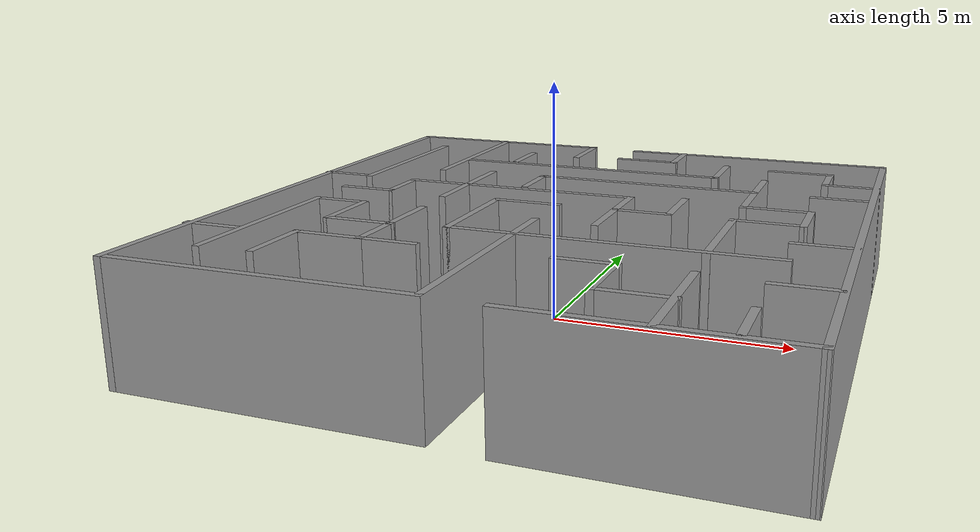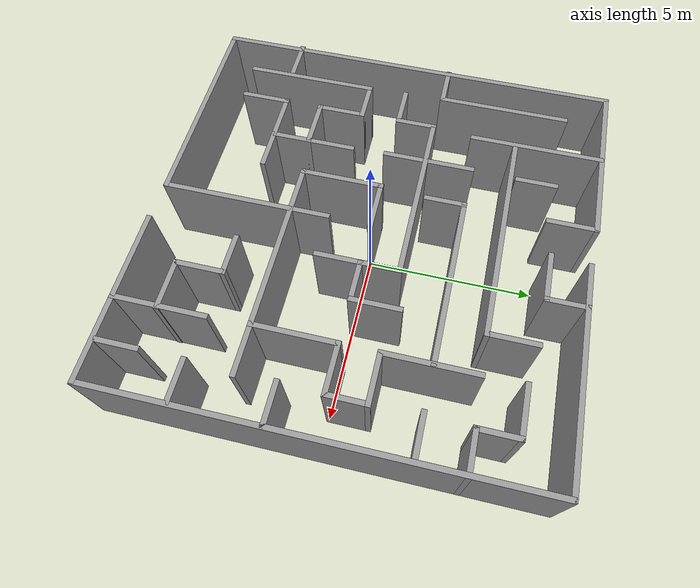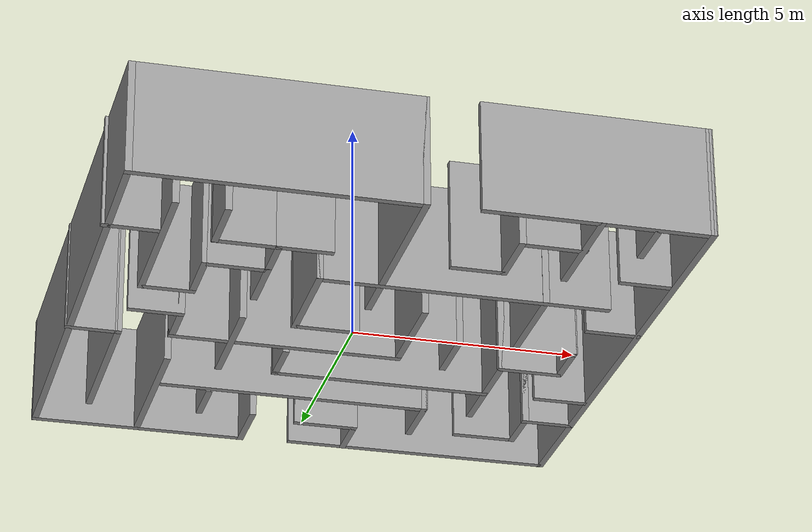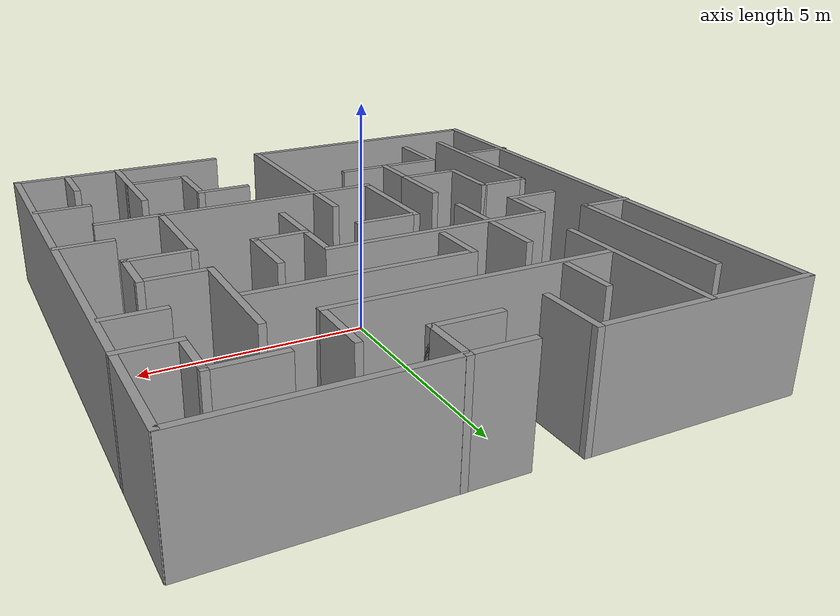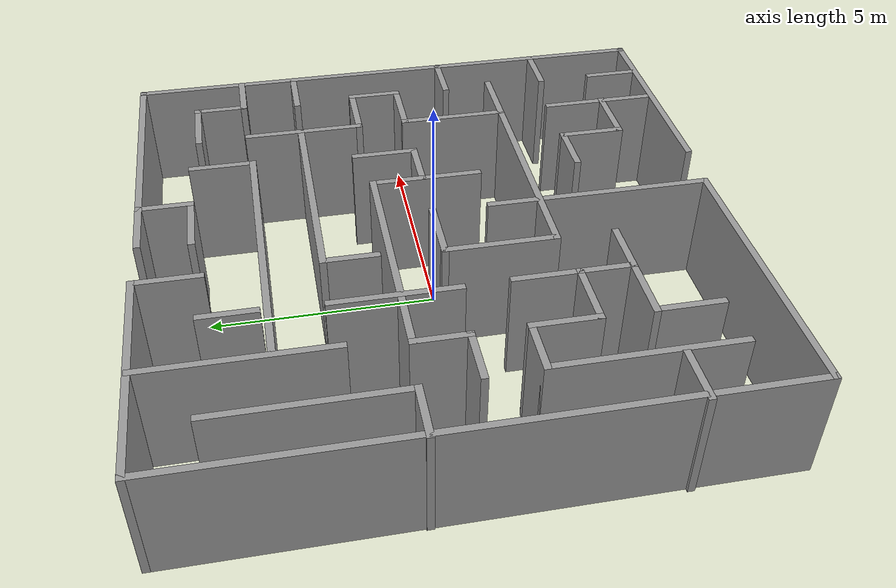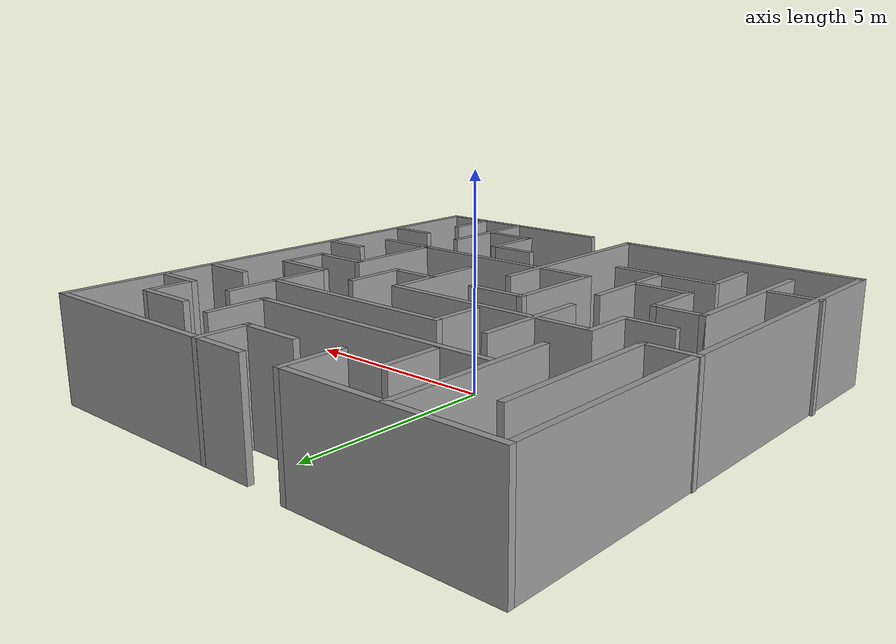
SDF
<?xml version='1.0'?>
<sdf version='1.6'>
  <model name='ue3_Maze.world'>
    <pose frame=''>0.005088 0.039914 0 0 -0 0</pose>
    <link name='Wall_1'>
      <collision name='Wall_1_Collision'>
        <geometry>
          <box>
            <size>1.5 0.15 2.5</size>
          </box>
        </geometry>
        <pose frame=''>0 0 1.25 0 -0 0</pose>
      </collision>
      <visual name='Wall_1_Visual'>
        <pose frame=''>0 0 1.25 0 -0 0</pose>
        <geometry>
          <box>
            <size>1.5 0.15 2.5</size>
          </box>
        </geometry>
        <material>
          <script>
            <uri>file://media/materials/scripts/gazebo.material</uri>
            <name>Gazebo/Grey</name>
          </script>
          <ambient>1 1 1 1</ambient>
        </material>
      </visual>
      <pose frame=''>-1.20477 5.53143 0 0 -0 1.5708</pose>
    </link>
    <link name='Wall_10'>
      <collision name='Wall_10_Collision'>
        <geometry>
          <box>
            <size>12.4598 0.15 2.5</size>
          </box>
        </geometry>
        <pose frame=''>0 0 1.25 0 -0 0</pose>
      </collision>
      <visual name='Wall_10_Visual'>
        <pose frame=''>0 0 1.25 0 -0 0</pose>
        <geometry>
          <box>
            <size>12.4598 0.15 2.5</size>
          </box>
        </geometry>
        <material>
          <script>
            <uri>file://media/materials/scripts/gazebo.material</uri>
            <name>Gazebo/Grey</name>
          </script>
          <ambient>1 1 1 1</ambient>
        </material>
      </visual>
      <pose frame=''>6.1121 -0.051418 0 0 0 -1.56916</pose>
    </link>
    <link name='Wall_11'>
      <collision name='Wall_11_Collision'>
        <geometry>
          <box>
            <size>5 0.15 2.5</size>
          </box>
        </geometry>
        <pose frame=''>0 0 1.25 0 -0 0</pose>
      </collision>
      <visual name='Wall_11_Visual'>
        <pose frame=''>0 0 1.25 0 -0 0</pose>
        <geometry>
          <box>
            <size>5 0.15 2.5</size>
          </box>
        </geometry>
        <material>
          <script>
            <uri>file://media/materials/scripts/gazebo.material</uri>
            <name>Gazebo/Grey</name>
          </script>
          <ambient>1 1 1 1</ambient>
        </material>
      </visual>
      <pose frame=''>3.67704 -6.20631 0 0 -0 3.14159</pose>
    </link>
    <link name='Wall_13'>
      <collision name='Wall_13_Collision'>
        <geometry>
          <box>
            <size>6.25 0.15 2.5</size>
          </box>
        </geometry>
        <pose frame=''>0 0 1.25 0 -0 0</pose>
      </collision>
      <visual name='Wall_13_Visual'>
        <pose frame=''>0 0 1.25 0 -0 0</pose>
        <geometry>
          <box>
            <size>6.25 0.15 2.5</size>
          </box>
        </geometry>
        <material>
          <script>
            <uri>file://media/materials/scripts/gazebo.material</uri>
            <name>Gazebo/Grey</name>
          </script>
          <ambient>1 1 1 1</ambient>
        </material>
      </visual>
      <pose frame=''>-0.487945 3.6295 0 0 -0 0</pose>
    </link>
    <link name='Wall_14'>
      <collision name='Wall_14_Collision'>
        <geometry>
          <box>
            <size>1.5 0.15 2.5</size>
          </box>
        </geometry>
        <pose frame=''>0 0 1.25 0 -0 0</pose>
      </collision>
      <visual name='Wall_14_Visual'>
        <pose frame=''>0 0 1.25 0 -0 0</pose>
        <geometry>
          <box>
            <size>1.5 0.15 2.5</size>
          </box>
        </geometry>
        <material>
          <script>
            <uri>file://media/materials/scripts/gazebo.material</uri>
            <name>Gazebo/Grey</name>
          </script>
          <ambient>1 1 1 1</ambient>
        </material>
      </visual>
      <pose frame=''>2.56205 4.3045 0 0 -0 1.5708</pose>
    </link>
    <link name='Wall_16'>
      <collision name='Wall_16_Collision'>
        <geometry>
          <box>
            <size>1.25 0.15 2.5</size>
          </box>
        </geometry>
        <pose frame=''>0 0 1.25 0 -0 0</pose>
      </collision>
      <visual name='Wall_16_Visual'>
        <pose frame=''>0 0 1.25 0 -0 0</pose>
        <geometry>
          <box>
            <size>1.25 0.15 2.5</size>
          </box>
        </geometry>
        <material>
          <script>
            <uri>file://media/materials/scripts/gazebo.material</uri>
            <name>Gazebo/Grey</name>
          </script>
          <ambient>1 1 1 1</ambient>
        </material>
      </visual>
      <pose frame=''>-2.4317 4.38688 0 0 0 -1.5708</pose>
    </link>
    <link name='Wall_2'>
      <collision name='Wall_2_Collision'>
        <geometry>
          <box>
            <size>5 0.15 2.5</size>
          </box>
        </geometry>
        <pose frame=''>0 0 1.25 0 -0 0</pose>
      </collision>
      <visual name='Wall_2_Visual'>
        <pose frame=''>0 0 1.25 0 -0 0</pose>
        <geometry>
          <box>
            <size>5 0.15 2.5</size>
          </box>
        </geometry>
        <material>
          <script>
            <uri>file://media/materials/scripts/gazebo.material</uri>
            <name>Gazebo/Grey</name>
          </script>
          <ambient>1 1 1 1</ambient>
        </material>
      </visual>
      <pose frame=''>-3.62977 6.20643 0 0 -0 3.14159</pose>
    </link>
    <link name='Wall_20'>
      <collision name='Wall_20_Collision'>
        <geometry>
          <box>
            <size>1.25 0.15 2.5</size>
          </box>
        </geometry>
        <pose frame=''>0 0 1.25 0 -0 0</pose>
      </collision>
      <visual name='Wall_20_Visual'>
        <pose frame=''>0 0 1.25 0 -0 0</pose>
        <geometry>
          <box>
            <size>1.25 0.15 2.5</size>
          </box>
        </geometry>
        <material>
          <script>
            <uri>file://media/materials/scripts/gazebo.material</uri>
            <name>Gazebo/Grey</name>
          </script>
          <ambient>1 1 1 1</ambient>
        </material>
      </visual>
      <pose frame=''>1.23929 5.57632 0 0 0 -1.5708</pose>
    </link>
    <link name='Wall_21'>
      <collision name='Wall_21_Collision'>
        <geometry>
          <box>
            <size>1.5 0.15 2.5</size>
          </box>
        </geometry>
        <pose frame=''>0 0 1.25 0 -0 0</pose>
      </collision>
      <visual name='Wall_21_Visual'>
        <pose frame=''>0 0 1.25 0 -0 0</pose>
        <geometry>
          <box>
            <size>1.5 0.15 2.5</size>
          </box>
        </geometry>
        <material>
          <script>
            <uri>file://media/materials/scripts/gazebo.material</uri>
            <name>Gazebo/Grey</name>
          </script>
          <ambient>1 1 1 1</ambient>
        </material>
      </visual>
      <pose frame=''>0.564288 5.02632 0 0 -0 3.14159</pose>
    </link>
    <link name='Wall_23'>
      <collision name='Wall_23_Collision'>
        <geometry>
          <box>
            <size>1.25 0.15 2.5</size>
          </box>
        </geometry>
        <pose frame=''>0 0 1.25 0 -0 0</pose>
      </collision>
      <visual name='Wall_23_Visual'>
        <pose frame=''>0 0 1.25 0 -0 0</pose>
        <geometry>
          <box>
            <size>1.25 0.15 2.5</size>
          </box>
        </geometry>
        <material>
          <script>
            <uri>file://media/materials/scripts/gazebo.material</uri>
            <name>Gazebo/Grey</name>
          </script>
          <ambient>1 1 1 1</ambient>
        </material>
      </visual>
      <pose frame=''>5.55677 3.71269 0 0 -0 3.14159</pose>
    </link>
    <link name='Wall_24'>
      <collision name='Wall_24_Collision'>
        <geometry>
          <box>
            <size>1.25 0.15 2.5</size>
          </box>
        </geometry>
        <pose frame=''>0 0 1.25 0 -0 0</pose>
      </collision>
      <visual name='Wall_24_Visual'>
        <pose frame=''>0 0 1.25 0 -0 0</pose>
        <geometry>
          <box>
            <size>1.25 0.15 2.5</size>
          </box>
        </geometry>
        <material>
          <script>
            <uri>file://media/materials/scripts/gazebo.material</uri>
            <name>Gazebo/Grey</name>
          </script>
          <ambient>1 1 1 1</ambient>
        </material>
      </visual>
      <pose frame=''>5.00677 4.26269 0 0 -0 1.5708</pose>
    </link>
    <link name='Wall_25'>
      <collision name='Wall_25_Collision'>
        <geometry>
          <box>
            <size>1.5 0.15 2.5</size>
          </box>
        </geometry>
        <pose frame=''>0 0 1.25 0 -0 0</pose>
      </collision>
      <visual name='Wall_25_Visual'>
        <pose frame=''>0 0 1.25 0 -0 0</pose>
        <geometry>
          <box>
            <size>1.5 0.15 2.5</size>
          </box>
        </geometry>
        <material>
          <script>
            <uri>file://media/materials/scripts/gazebo.material</uri>
            <name>Gazebo/Grey</name>
          </script>
          <ambient>1 1 1 1</ambient>
        </material>
      </visual>
      <pose frame=''>4.33177 4.81269 0 0 -0 3.14159</pose>
    </link>
    <link name='Wall_27'>
      <collision name='Wall_27_Collision'>
        <geometry>
          <box>
            <size>1.25 0.15 2.5</size>
          </box>
        </geometry>
        <pose frame=''>0 0 1.25 0 -0 0</pose>
      </collision>
      <visual name='Wall_27_Visual'>
        <pose frame=''>0 0 1.25 0 -0 0</pose>
        <geometry>
          <box>
            <size>1.25 0.15 2.5</size>
          </box>
        </geometry>
        <material>
          <script>
            <uri>file://media/materials/scripts/gazebo.material</uri>
            <name>Gazebo/Grey</name>
          </script>
          <ambient>1 1 1 1</ambient>
        </material>
      </visual>
      <pose frame=''>5.4562 2.42542 0 0 -0 3.14159</pose>
    </link>
    <link name='Wall_29'>
      <collision name='Wall_29_Collision'>
        <geometry>
          <box>
            <size>1.25 0.15 2.5</size>
          </box>
        </geometry>
        <pose frame=''>0 0 1.25 0 -0 0</pose>
      </collision>
      <visual name='Wall_29_Visual'>
        <pose frame=''>0 0 1.25 0 -0 0</pose>
        <geometry>
          <box>
            <size>1.25 0.15 2.5</size>
          </box>
        </geometry>
        <material>
          <script>
            <uri>file://media/materials/scripts/gazebo.material</uri>
            <name>Gazebo/Grey</name>
          </script>
          <ambient>1 1 1 1</ambient>
        </material>
      </visual>
      <pose frame=''>5.53666 -1.27548 0 0 -0 3.14159</pose>
    </link>
    <link name='Wall_3'>
      <collision name='Wall_3_Collision'>
        <geometry>
          <box>
            <size>12.5 0.15 2.5</size>
          </box>
        </geometry>
        <pose frame=''>0 0 1.25 0 -0 0</pose>
      </collision>
      <visual name='Wall_3_Visual'>
        <pose frame=''>0 0 1.25 0 -0 0</pose>
        <geometry>
          <box>
            <size>12.5 0.15 2.5</size>
          </box>
        </geometry>
        <material>
          <script>
            <uri>file://media/materials/scripts/gazebo.material</uri>
            <name>Gazebo/Grey</name>
          </script>
          <ambient>1 1 1 1</ambient>
        </material>
      </visual>
      <pose frame=''>-6.05477 0.031427 0 0 0 -1.5708</pose>
    </link>
    <link name='Wall_31'>
      <collision name='Wall_31_Collision'>
        <geometry>
          <box>
            <size>1.25 0.15 2.5</size>
          </box>
        </geometry>
        <pose frame=''>0 0 1.25 0 -0 0</pose>
      </collision>
      <visual name='Wall_31_Visual'>
        <pose frame=''>0 0 1.25 0 -0 0</pose>
        <geometry>
          <box>
            <size>1.25 0.15 2.5</size>
          </box>
        </geometry>
        <material>
          <script>
            <uri>file://media/materials/scripts/gazebo.material</uri>
            <name>Gazebo/Grey</name>
          </script>
          <ambient>1 1 1 1</ambient>
        </material>
      </visual>
      <pose frame=''>5.51655 -3.72933 0 0 -0 3.14159</pose>
    </link>
    <link name='Wall_33'>
      <collision name='Wall_33_Collision'>
        <geometry>
          <box>
            <size>1.25 0.15 2.5</size>
          </box>
        </geometry>
        <pose frame=''>0 0 1.25 0 -0 0</pose>
      </collision>
      <visual name='Wall_33_Visual'>
        <pose frame=''>0 0 1.25 0 -0 0</pose>
        <geometry>
          <box>
            <size>1.25 0.15 2.5</size>
          </box>
        </geometry>
        <material>
          <script>
            <uri>file://media/materials/scripts/gazebo.material</uri>
            <name>Gazebo/Grey</name>
          </script>
          <ambient>1 1 1 1</ambient>
        </material>
      </visual>
      <pose frame=''>5.51655 -3.72933 0 0 -0 3.14159</pose>
    </link>
    <link name='Wall_37'>
      <collision name='Wall_37_Collision'>
        <geometry>
          <box>
            <size>1.25 0.15 2.5</size>
          </box>
        </geometry>
        <pose frame=''>0 0 1.25 0 -0 0</pose>
      </collision>
      <visual name='Wall_37_Visual'>
        <pose frame=''>0 0 1.25 0 -0 0</pose>
        <geometry>
          <box>
            <size>1.25 0.15 2.5</size>
          </box>
        </geometry>
        <material>
          <script>
            <uri>file://media/materials/scripts/gazebo.material</uri>
            <name>Gazebo/Grey</name>
          </script>
          <ambient>1 1 1 1</ambient>
        </material>
      </visual>
      <pose frame=''>4.9603 -5.55273 0 0 -0 1.5708</pose>
    </link>
    <link name='Wall_39'>
      <collision name='Wall_39_Collision'>
        <geometry>
          <box>
            <size>2.75 0.15 2.5</size>
          </box>
        </geometry>
        <pose frame=''>0 0 1.25 0 -0 0</pose>
      </collision>
      <visual name='Wall_39_Visual'>
        <pose frame=''>0 0 1.25 0 -0 0</pose>
        <geometry>
          <box>
            <size>2.75 0.15 2.5</size>
          </box>
        </geometry>
        <material>
          <script>
            <uri>file://media/materials/scripts/gazebo.material</uri>
            <name>Gazebo/Grey</name>
          </script>
          <ambient>1 1 1 1</ambient>
        </material>
      </visual>
      <pose frame=''>3.73337 -4.9033 0 0 -0 1.5708</pose>
    </link>
    <link name='Wall_4'>
      <collision name='Wall_4_Collision'>
        <geometry>
          <box>
            <size>6.25 0.15 2.5</size>
          </box>
        </geometry>
        <pose frame=''>0 0 1.25 0 -0 0</pose>
      </collision>
      <visual name='Wall_4_Visual'>
        <pose frame=''>0 0 1.25 0 -0 0</pose>
        <geometry>
          <box>
            <size>6.25 0.15 2.5</size>
          </box>
        </geometry>
        <material>
          <script>
            <uri>file://media/materials/scripts/gazebo.material</uri>
            <name>Gazebo/Grey</name>
          </script>
          <ambient>1 1 1 1</ambient>
        </material>
      </visual>
      <pose frame=''>-3.00477 -6.14357 0 0 -0 0</pose>
    </link>
    <link name='Wall_41'>
      <collision name='Wall_41_Collision'>
        <geometry>
          <box>
            <size>1.5 0.15 2.5</size>
          </box>
        </geometry>
        <pose frame=''>0 0 1.25 0 -0 0</pose>
      </collision>
      <visual name='Wall_41_Visual'>
        <pose frame=''>0 0 1.25 0 -0 0</pose>
        <geometry>
          <box>
            <size>1.5 0.15 2.5</size>
          </box>
        </geometry>
        <material>
          <script>
            <uri>file://media/materials/scripts/gazebo.material</uri>
            <name>Gazebo/Grey</name>
          </script>
          <ambient>1 1 1 1</ambient>
        </material>
      </visual>
      <pose frame=''>3.07849 -4.93615 0 0 -0 3.14159</pose>
    </link>
    <link name='Wall_42'>
      <collision name='Wall_42_Collision'>
        <geometry>
          <box>
            <size>1.5 0.15 2.5</size>
          </box>
        </geometry>
        <pose frame=''>0 0 1.25 0 -0 0</pose>
      </collision>
      <visual name='Wall_42_Visual'>
        <pose frame=''>0 0 1.25 0 -0 0</pose>
        <geometry>
          <box>
            <size>1.5 0.15 2.5</size>
          </box>
        </geometry>
        <material>
          <script>
            <uri>file://media/materials/scripts/gazebo.material</uri>
            <name>Gazebo/Grey</name>
          </script>
          <ambient>1 1 1 1</ambient>
        </material>
      </visual>
      <pose frame=''>2.40348 -4.26115 0 0 -0 1.5708</pose>
    </link>
    <link name='Wall_43'>
      <collision name='Wall_43_Collision'>
        <geometry>
          <box>
            <size>1.25 0.15 2.5</size>
          </box>
        </geometry>
        <pose frame=''>0 0 1.25 0 -0 0</pose>
      </collision>
      <visual name='Wall_43_Visual'>
        <pose frame=''>0 0 1.25 0 -0 0</pose>
        <geometry>
          <box>
            <size>1.25 0.15 2.5</size>
          </box>
        </geometry>
        <material>
          <script>
            <uri>file://media/materials/scripts/gazebo.material</uri>
            <name>Gazebo/Grey</name>
          </script>
          <ambient>1 1 1 1</ambient>
        </material>
      </visual>
      <pose frame=''>1.85349 -3.58615 0 0 -0 3.14159</pose>
    </link>
    <link name='Wall_45'>
      <collision name='Wall_45_Collision'>
        <geometry>
          <box>
            <size>1.25 0.15 2.5</size>
          </box>
        </geometry>
        <pose frame=''>0 0 1.25 0 -0 0</pose>
      </collision>
      <visual name='Wall_45_Visual'>
        <pose frame=''>0 0 1.25 0 -0 0</pose>
        <geometry>
          <box>
            <size>1.25 0.15 2.5</size>
          </box>
        </geometry>
        <material>
          <script>
            <uri>file://media/materials/scripts/gazebo.material</uri>
            <name>Gazebo/Grey</name>
          </script>
          <ambient>1 1 1 1</ambient>
        </material>
      </visual>
      <pose frame=''>-5.53205 1.15827 0 0 -0 0</pose>
    </link>
    <link name='Wall_46'>
      <collision name='Wall_46_Collision'>
        <geometry>
          <box>
            <size>4 0.15 2.5</size>
          </box>
        </geometry>
        <pose frame=''>0 0 1.25 0 -0 0</pose>
      </collision>
      <visual name='Wall_46_Visual'>
        <pose frame=''>0 0 1.25 0 -0 0</pose>
        <geometry>
          <box>
            <size>4 0.15 2.5</size>
          </box>
        </geometry>
        <material>
          <script>
            <uri>file://media/materials/scripts/gazebo.material</uri>
            <name>Gazebo/Grey</name>
          </script>
          <ambient>1 1 1 1</ambient>
        </material>
      </visual>
      <pose frame=''>-4.98205 3.08327 0 0 -0 1.5708</pose>
    </link>
    <link name='Wall_48'>
      <collision name='Wall_48_Collision'>
        <geometry>
          <box>
            <size>1.25 0.15 2.5</size>
          </box>
        </geometry>
        <pose frame=''>0 0 1.25 0 -0 0</pose>
      </collision>
      <visual name='Wall_48_Visual'>
        <pose frame=''>0 0 1.25 0 -0 0</pose>
        <geometry>
          <box>
            <size>1.25 0.15 2.5</size>
          </box>
        </geometry>
        <material>
          <script>
            <uri>file://media/materials/scripts/gazebo.material</uri>
            <name>Gazebo/Grey</name>
          </script>
          <ambient>1 1 1 1</ambient>
        </material>
      </visual>
      <pose frame=''>-5.57228 -3.78967 0 0 -0 0</pose>
    </link>
    <link name='Wall_5'>
      <collision name='Wall_5_Collision'>
        <geometry>
          <box>
            <size>5 0.15 2.5</size>
          </box>
        </geometry>
        <pose frame=''>0 0 1.25 0 -0 0</pose>
      </collision>
      <visual name='Wall_5_Visual'>
        <pose frame=''>0 0 1.25 0 -0 0</pose>
        <geometry>
          <box>
            <size>5 0.15 2.5</size>
          </box>
        </geometry>
        <material>
          <script>
            <uri>file://media/materials/scripts/gazebo.material</uri>
            <name>Gazebo/Grey</name>
          </script>
          <ambient>1 1 1 1</ambient>
        </material>
      </visual>
      <pose frame=''>0.04523 -3.71857 0 0 -0 1.5708</pose>
    </link>
    <link name='Wall_50'>
      <collision name='Wall_50_Collision'>
        <geometry>
          <box>
            <size>4 0.15 2.5</size>
          </box>
        </geometry>
        <pose frame=''>0 0 1.25 0 -0 0</pose>
      </collision>
      <visual name='Wall_50_Visual'>
        <pose frame=''>0 0 1.25 0 -0 0</pose>
        <geometry>
          <box>
            <size>4 0.15 2.5</size>
          </box>
        </geometry>
        <material>
          <script>
            <uri>file://media/materials/scripts/gazebo.material</uri>
            <name>Gazebo/Grey</name>
          </script>
          <ambient>1 1 1 1</ambient>
        </material>
      </visual>
      <pose frame=''>-4.89535 -3.11171 0 0 -0 1.5708</pose>
    </link>
    <link name='Wall_51'>
      <collision name='Wall_51_Collision'>
        <geometry>
          <box>
            <size>1.25 0.15 2.5</size>
          </box>
        </geometry>
        <pose frame=''>0 0 1.25 0 -0 0</pose>
      </collision>
      <visual name='Wall_51_Visual'>
        <pose frame=''>0 0 1.25 0 -0 0</pose>
        <geometry>
          <box>
            <size>1.25 0.15 2.5</size>
          </box>
        </geometry>
        <material>
          <script>
            <uri>file://media/materials/scripts/gazebo.material</uri>
            <name>Gazebo/Grey</name>
          </script>
          <ambient>1 1 1 1</ambient>
        </material>
      </visual>
      <pose frame=''>-4.34535 -1.18671 0 0 -0 0</pose>
    </link>
    <link name='Wall_52'>
      <collision name='Wall_52_Collision'>
        <geometry>
          <box>
            <size>1.5 0.15 2.5</size>
          </box>
        </geometry>
        <pose frame=''>0 0 1.25 0 -0 0</pose>
      </collision>
      <visual name='Wall_52_Visual'>
        <pose frame=''>0 0 1.25 0 -0 0</pose>
        <geometry>
          <box>
            <size>1.5 0.15 2.5</size>
          </box>
        </geometry>
        <material>
          <script>
            <uri>file://media/materials/scripts/gazebo.material</uri>
            <name>Gazebo/Grey</name>
          </script>
          <ambient>1 1 1 1</ambient>
        </material>
      </visual>
      <pose frame=''>-3.79535 -1.86171 0 0 0 -1.5708</pose>
    </link>
    <link name='Wall_53'>
      <collision name='Wall_53_Collision'>
        <geometry>
          <box>
            <size>1.5 0.15 2.5</size>
          </box>
        </geometry>
        <pose frame=''>0 0 1.25 0 -0 0</pose>
      </collision>
      <visual name='Wall_53_Visual'>
        <pose frame=''>0 0 1.25 0 -0 0</pose>
        <geometry>
          <box>
            <size>1.5 0.15 2.5</size>
          </box>
        </geometry>
        <material>
          <script>
            <uri>file://media/materials/scripts/gazebo.material</uri>
            <name>Gazebo/Grey</name>
          </script>
          <ambient>1 1 1 1</ambient>
        </material>
      </visual>
      <pose frame=''>-3.12035 -2.53671 0 0 -0 0</pose>
    </link>
    <link name='Wall_54'>
      <collision name='Wall_54_Collision'>
        <geometry>
          <box>
            <size>1.25 0.15 2.5</size>
          </box>
        </geometry>
        <pose frame=''>0 0 1.25 0 -0 0</pose>
      </collision>
      <visual name='Wall_54_Visual'>
        <pose frame=''>0 0 1.25 0 -0 0</pose>
        <geometry>
          <box>
            <size>1.25 0.15 2.5</size>
          </box>
        </geometry>
        <material>
          <script>
            <uri>file://media/materials/scripts/gazebo.material</uri>
            <name>Gazebo/Grey</name>
          </script>
          <ambient>1 1 1 1</ambient>
        </material>
      </visual>
      <pose frame=''>-2.44535 -3.08671 0 0 0 -1.5708</pose>
    </link>
    <link name='Wall_55'>
      <collision name='Wall_55_Collision'>
        <geometry>
          <box>
            <size>1.5 0.15 2.5</size>
          </box>
        </geometry>
        <pose frame=''>0 0 1.25 0 -0 0</pose>
      </collision>
      <visual name='Wall_55_Visual'>
        <pose frame=''>0 0 1.25 0 -0 0</pose>
        <geometry>
          <box>
            <size>1.5 0.15 2.5</size>
          </box>
        </geometry>
        <material>
          <script>
            <uri>file://media/materials/scripts/gazebo.material</uri>
            <name>Gazebo/Grey</name>
          </script>
          <ambient>1 1 1 1</ambient>
        </material>
      </visual>
      <pose frame=''>-3.12035 -3.63671 0 0 -0 3.14159</pose>
    </link>
    <link name='Wall_56'>
      <collision name='Wall_56_Collision'>
        <geometry>
          <box>
            <size>1.5 0.15 2.5</size>
          </box>
        </geometry>
        <pose frame=''>0 0 1.25 0 -0 0</pose>
      </collision>
      <visual name='Wall_56_Visual'>
        <pose frame=''>0 0 1.25 0 -0 0</pose>
        <geometry>
          <box>
            <size>1.5 0.15 2.5</size>
          </box>
        </geometry>
        <material>
          <script>
            <uri>file://media/materials/scripts/gazebo.material</uri>
            <name>Gazebo/Grey</name>
          </script>
          <ambient>1 1 1 1</ambient>
        </material>
      </visual>
      <pose frame=''>-3.79535 -4.31171 0 0 0 -1.5708</pose>
    </link>
    <link name='Wall_58'>
      <collision name='Wall_58_Collision'>
        <geometry>
          <box>
            <size>1.25 0.15 2.5</size>
          </box>
        </geometry>
        <pose frame=''>0 0 1.25 0 -0 0</pose>
      </collision>
      <visual name='Wall_58_Visual'>
        <pose frame=''>0 0 1.25 0 -0 0</pose>
        <geometry>
          <box>
            <size>1.25 0.15 2.5</size>
          </box>
        </geometry>
        <material>
          <script>
            <uri>file://media/materials/scripts/gazebo.material</uri>
            <name>Gazebo/Grey</name>
          </script>
          <ambient>1 1 1 1</ambient>
        </material>
      </visual>
      <pose frame=''>-4.36547 -0.028434 0 0 -0 0</pose>
    </link>
    <link name='Wall_59'>
      <collision name='Wall_59_Collision'>
        <geometry>
          <box>
            <size>1.25 0.15 2.5</size>
          </box>
        </geometry>
        <pose frame=''>0 0 1.25 0 -0 0</pose>
      </collision>
      <visual name='Wall_59_Visual'>
        <pose frame=''>0 0 1.25 0 -0 0</pose>
        <geometry>
          <box>
            <size>1.25 0.15 2.5</size>
          </box>
        </geometry>
        <material>
          <script>
            <uri>file://media/materials/scripts/gazebo.material</uri>
            <name>Gazebo/Grey</name>
          </script>
          <ambient>1 1 1 1</ambient>
        </material>
      </visual>
      <pose frame=''>-3.81547 0.521566 0 0 -0 1.5708</pose>
    </link>
    <link name='Wall_60'>
      <collision name='Wall_60_Collision'>
        <geometry>
          <box>
            <size>5.25 0.15 2.5</size>
          </box>
        </geometry>
        <pose frame=''>0 0 1.25 0 -0 0</pose>
      </collision>
      <visual name='Wall_60_Visual'>
        <pose frame=''>0 0 1.25 0 -0 0</pose>
        <geometry>
          <box>
            <size>5.25 0.15 2.5</size>
          </box>
        </geometry>
        <material>
          <script>
            <uri>file://media/materials/scripts/gazebo.material</uri>
            <name>Gazebo/Grey</name>
          </script>
          <ambient>1 1 1 1</ambient>
        </material>
      </visual>
      <pose frame=''>-1.26547 1.07157 0 0 -0 0</pose>
    </link>
    <link name='Wall_61'>
      <collision name='Wall_61_Collision'>
        <geometry>
          <box>
            <size>2.5 0.15 2.5</size>
          </box>
        </geometry>
        <pose frame=''>0 0 1.25 0 -0 0</pose>
      </collision>
      <visual name='Wall_61_Visual'>
        <pose frame=''>0 0 1.25 0 -0 0</pose>
        <geometry>
          <box>
            <size>2.5 0.15 2.5</size>
          </box>
        </geometry>
        <material>
          <script>
            <uri>file://media/materials/scripts/gazebo.material</uri>
            <name>Gazebo/Grey</name>
          </script>
          <ambient>1 1 1 1</ambient>
        </material>
      </visual>
      <pose frame=''>1.28453 -0.103434 0 0 0 -1.5708</pose>
    </link>
    <link name='Wall_63'>
      <collision name='Wall_63_Collision'>
        <geometry>
          <box>
            <size>2.75 0.15 2.5</size>
          </box>
        </geometry>
        <pose frame=''>0 0 1.25 0 -0 0</pose>
      </collision>
      <visual name='Wall_63_Visual'>
        <pose frame=''>0 0 1.25 0 -0 0</pose>
        <geometry>
          <box>
            <size>2.75 0.15 2.5</size>
          </box>
        </geometry>
        <material>
          <script>
            <uri>file://media/materials/scripts/gazebo.material</uri>
            <name>Gazebo/Grey</name>
          </script>
          <ambient>1 1 1 1</ambient>
        </material>
      </visual>
      <pose frame=''>-2.48172 1.16565 0 0 0 -1.5708</pose>
    </link>
    <link name='Wall_65'>
      <collision name='Wall_65_Collision'>
        <geometry>
          <box>
            <size>1.5 0.15 2.5</size>
          </box>
        </geometry>
        <pose frame=''>0 0 1.25 0 -0 0</pose>
      </collision>
      <visual name='Wall_65_Visual'>
        <pose frame=''>0 0 1.25 0 -0 0</pose>
        <geometry>
          <box>
            <size>1.5 0.15 2.5</size>
          </box>
        </geometry>
        <material>
          <script>
            <uri>file://media/materials/scripts/gazebo.material</uri>
            <name>Gazebo/Grey</name>
          </script>
          <ambient>1 1 1 1</ambient>
        </material>
      </visual>
      <pose frame=''>-0.622412 -0.028434 0 0 -0 3.14159</pose>
    </link>
    <link name='Wall_66'>
      <collision name='Wall_66_Collision'>
        <geometry>
          <box>
            <size>2.5 0.15 2.5</size>
          </box>
        </geometry>
        <pose frame=''>0 0 1.25 0 -0 0</pose>
      </collision>
      <visual name='Wall_66_Visual'>
        <pose frame=''>0 0 1.25 0 -0 0</pose>
        <geometry>
          <box>
            <size>2.5 0.15 2.5</size>
          </box>
        </geometry>
        <material>
          <script>
            <uri>file://media/materials/scripts/gazebo.material</uri>
            <name>Gazebo/Grey</name>
          </script>
          <ambient>1 1 1 1</ambient>
        </material>
      </visual>
      <pose frame=''>-1.29741 -1.20343 0 0 0 -1.5708</pose>
    </link>
    <link name='Wall_67'>
      <collision name='Wall_67_Collision'>
        <geometry>
          <box>
            <size>6.5 0.15 2.5</size>
          </box>
        </geometry>
        <pose frame=''>0 0 1.25 0 -0 0</pose>
      </collision>
      <visual name='Wall_67_Visual'>
        <pose frame=''>0 0 1.25 0 -0 0</pose>
        <geometry>
          <box>
            <size>6.5 0.15 2.5</size>
          </box>
        </geometry>
        <material>
          <script>
            <uri>file://media/materials/scripts/gazebo.material</uri>
            <name>Gazebo/Grey</name>
          </script>
          <ambient>1 1 1 1</ambient>
        </material>
      </visual>
      <pose frame=''>1.87759 -2.37843 0 0 -0 0</pose>
    </link>
    <link name='Wall_69'>
      <collision name='Wall_69_Collision'>
        <geometry>
          <box>
            <size>2.5 0.15 2.5</size>
          </box>
        </geometry>
        <pose frame=''>0 0 1.25 0 -0 0</pose>
      </collision>
      <visual name='Wall_69_Visual'>
        <pose frame=''>0 0 1.25 0 -0 0</pose>
        <geometry>
          <box>
            <size>2.5 0.15 2.5</size>
          </box>
        </geometry>
        <material>
          <script>
            <uri>file://media/materials/scripts/gazebo.material</uri>
            <name>Gazebo/Grey</name>
          </script>
          <ambient>1 1 1 1</ambient>
        </material>
      </visual>
      <pose frame=''>3.67303 -1.20672 0 0 -0 1.5708</pose>
    </link>
    <link name='Wall_7'>
      <collision name='Wall_7_Collision'>
        <geometry>
          <box>
            <size>4 0.15 2.5</size>
          </box>
        </geometry>
        <pose frame=''>0 0 1.25 0 -0 0</pose>
      </collision>
      <visual name='Wall_7_Visual'>
        <pose frame=''>0 0 1.25 0 -0 0</pose>
        <geometry>
          <box>
            <size>4 0.15 2.5</size>
          </box>
        </geometry>
        <material>
          <script>
            <uri>file://media/materials/scripts/gazebo.material</uri>
            <name>Gazebo/Grey</name>
          </script>
          <ambient>1 1 1 1</ambient>
        </material>
      </visual>
      <pose frame=''>-3.67874 4.25892 0 0 0 -1.5708</pose>
    </link>
    <link name='Wall_70'>
      <collision name='Wall_70_Collision'>
        <geometry>
          <box>
            <size>1.5 0.15 2.5</size>
          </box>
        </geometry>
        <pose frame=''>0 0 1.25 0 -0 0</pose>
      </collision>
      <visual name='Wall_70_Visual'>
        <pose frame=''>0 0 1.25 0 -0 0</pose>
        <geometry>
          <box>
            <size>1.5 0.15 2.5</size>
          </box>
        </geometry>
        <material>
          <script>
            <uri>file://media/materials/scripts/gazebo.material</uri>
            <name>Gazebo/Grey</name>
          </script>
          <ambient>1 1 1 1</ambient>
        </material>
      </visual>
      <pose frame=''>4.34803 -0.031722 0 0 -0 0</pose>
    </link>
    <link name='Wall_71'>
      <collision name='Wall_71_Collision'>
        <geometry>
          <box>
            <size>1.25 0.15 2.5</size>
          </box>
        </geometry>
        <pose frame=''>0 0 1.25 0 -0 0</pose>
      </collision>
      <visual name='Wall_71_Visual'>
        <pose frame=''>0 0 1.25 0 -0 0</pose>
        <geometry>
          <box>
            <size>1.25 0.15 2.5</size>
          </box>
        </geometry>
        <material>
          <script>
            <uri>file://media/materials/scripts/gazebo.material</uri>
            <name>Gazebo/Grey</name>
          </script>
          <ambient>1 1 1 1</ambient>
        </material>
      </visual>
      <pose frame=''>5.02303 0.518278 0 0 -0 1.5708</pose>
    </link>
    <link name='Wall_72'>
      <collision name='Wall_72_Collision'>
        <geometry>
          <box>
            <size>1.5 0.15 2.5</size>
          </box>
        </geometry>
        <pose frame=''>0 0 1.25 0 -0 0</pose>
      </collision>
      <visual name='Wall_72_Visual'>
        <pose frame=''>0 0 1.25 0 -0 0</pose>
        <geometry>
          <box>
            <size>1.5 0.15 2.5</size>
          </box>
        </geometry>
        <material>
          <script>
            <uri>file://media/materials/scripts/gazebo.material</uri>
            <name>Gazebo/Grey</name>
          </script>
          <ambient>1 1 1 1</ambient>
        </material>
      </visual>
      <pose frame=''>4.34803 1.06828 0 0 -0 3.14159</pose>
    </link>
    <link name='Wall_73'>
      <collision name='Wall_73_Collision'>
        <geometry>
          <box>
            <size>2.75 0.15 2.5</size>
          </box>
        </geometry>
        <pose frame=''>0 0 1.25 0 -0 0</pose>
      </collision>
      <visual name='Wall_73_Visual'>
        <pose frame=''>0 0 1.25 0 -0 0</pose>
        <geometry>
          <box>
            <size>2.75 0.15 2.5</size>
          </box>
        </geometry>
        <material>
          <script>
            <uri>file://media/materials/scripts/gazebo.material</uri>
            <name>Gazebo/Grey</name>
          </script>
          <ambient>1 1 1 1</ambient>
        </material>
      </visual>
      <pose frame=''>3.67303 2.36828 0 0 -0 1.5708</pose>
    </link>
    <link name='Wall_75'>
      <collision name='Wall_75_Collision'>
        <geometry>
          <box>
            <size>5 0.15 2.5</size>
          </box>
        </geometry>
        <pose frame=''>0 0 1.25 0 -0 0</pose>
      </collision>
      <visual name='Wall_75_Visual'>
        <pose frame=''>0 0 1.25 0 -0 0</pose>
        <geometry>
          <box>
            <size>5 0.15 2.5</size>
          </box>
        </geometry>
        <material>
          <script>
            <uri>file://media/materials/scripts/gazebo.material</uri>
            <name>Gazebo/Grey</name>
          </script>
          <ambient>1 1 1 1</ambient>
        </material>
      </visual>
      <pose frame=''>1.22792 2.44554 0 0 -0 3.14159</pose>
    </link>
    <link name='Wall_76'>
      <collision name='Wall_76_Collision'>
        <geometry>
          <box>
            <size>1.25 0.15 2.5</size>
          </box>
        </geometry>
        <pose frame=''>0 0 1.25 0 -0 0</pose>
      </collision>
      <visual name='Wall_76_Visual'>
        <pose frame=''>0 0 1.25 0 -0 0</pose>
        <geometry>
          <box>
            <size>1.25 0.15 2.5</size>
          </box>
        </geometry>
        <material>
          <script>
            <uri>file://media/materials/scripts/gazebo.material</uri>
            <name>Gazebo/Grey</name>
          </script>
          <ambient>1 1 1 1</ambient>
        </material>
      </visual>
      <pose frame=''>-1.19708 1.89553 0 0 0 -1.5708</pose>
    </link>
    <link name='Wall_78'>
      <collision name='Wall_78_Collision'>
        <geometry>
          <box>
            <size>1.25 0.15 2.5</size>
          </box>
        </geometry>
        <pose frame=''>0 0 1.25 0 -0 0</pose>
      </collision>
      <visual name='Wall_78_Visual'>
        <pose frame=''>0 0 1.25 0 -0 0</pose>
        <geometry>
          <box>
            <size>1.25 0.15 2.5</size>
          </box>
        </geometry>
        <material>
          <script>
            <uri>file://media/materials/scripts/gazebo.material</uri>
            <name>Gazebo/Grey</name>
          </script>
          <ambient>1 1 1 1</ambient>
        </material>
      </visual>
      <pose frame=''>1.84963 -0.028434 0 0 -0 0</pose>
    </link>
    <link name='Wall_79'>
      <collision name='Wall_79_Collision'>
        <geometry>
          <box>
            <size>1.5 0.15 2.5</size>
          </box>
        </geometry>
        <pose frame=''>0 0 1.25 0 -0 0</pose>
      </collision>
      <visual name='Wall_79_Visual'>
        <pose frame=''>0 0 1.25 0 -0 0</pose>
        <geometry>
          <box>
            <size>1.5 0.15 2.5</size>
          </box>
        </geometry>
        <material>
          <script>
            <uri>file://media/materials/scripts/gazebo.material</uri>
            <name>Gazebo/Grey</name>
          </script>
          <ambient>1 1 1 1</ambient>
        </material>
      </visual>
      <pose frame=''>2.39963 0.646566 0 0 -0 1.5708</pose>
    </link>
    <link name='Wall_81'>
      <collision name='Wall_81_Collision'>
        <geometry>
          <box>
            <size>1.5 0.15 2.5</size>
          </box>
        </geometry>
        <pose frame=''>0 0 1.25 0 -0 0</pose>
      </collision>
      <visual name='Wall_81_Visual'>
        <pose frame=''>0 0 1.25 0 -0 0</pose>
        <geometry>
          <box>
            <size>1.5 0.15 2.5</size>
          </box>
        </geometry>
        <material>
          <script>
            <uri>file://media/materials/scripts/gazebo.material</uri>
            <name>Gazebo/Grey</name>
          </script>
          <ambient>1 1 1 1</ambient>
        </material>
      </visual>
      <pose frame=''>-2.44535 -1.86171 0 0 -0 1.5708</pose>
    </link>
    <link name='Wall_83'>
      <collision name='Wall_83_Collision'>
        <geometry>
          <box>
            <size>1.25 0.15 2.5</size>
          </box>
        </geometry>
        <pose frame=''>0 0 1.25 0 -0 0</pose>
      </collision>
      <visual name='Wall_83_Visual'>
        <pose frame=''>0 0 1.25 0 -0 0</pose>
        <geometry>
          <box>
            <size>1.25 0.15 2.5</size>
          </box>
        </geometry>
        <material>
          <script>
            <uri>file://media/materials/scripts/gazebo.material</uri>
            <name>Gazebo/Grey</name>
          </script>
          <ambient>1 1 1 1</ambient>
        </material>
      </visual>
      <pose frame=''>-1.89535 -3.63671 0 0 -0 0</pose>
    </link>
    <link name='Wall_9'>
      <collision name='Wall_9_Collision'>
        <geometry>
          <box>
            <size>6.25 0.15 2.5</size>
          </box>
        </geometry>
        <pose frame=''>0 0 1.25 0 -0 0</pose>
      </collision>
      <visual name='Wall_9_Visual'>
        <pose frame=''>0 0 1.25 0 -0 0</pose>
        <geometry>
          <box>
            <size>6.25 0.15 2.5</size>
          </box>
        </geometry>
        <material>
          <script>
            <uri>file://media/materials/scripts/gazebo.material</uri>
            <name>Gazebo/Grey</name>
          </script>
          <ambient>1 1 1 1</ambient>
        </material>
      </visual>
      <pose frame=''>3.03193 6.12358 0 0 -0 0</pose>
    </link>
    <static>1</static>
  </model>
</sdf>
